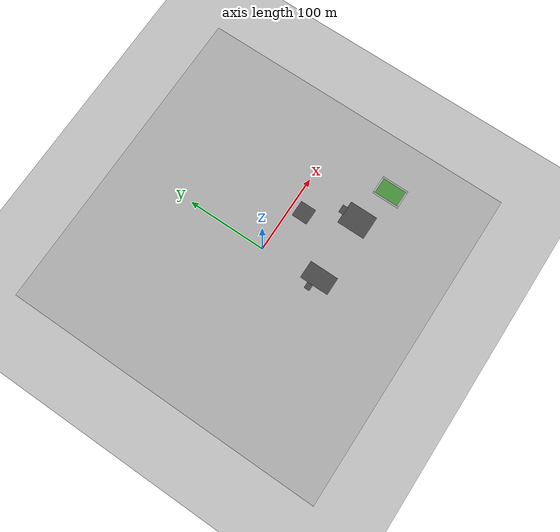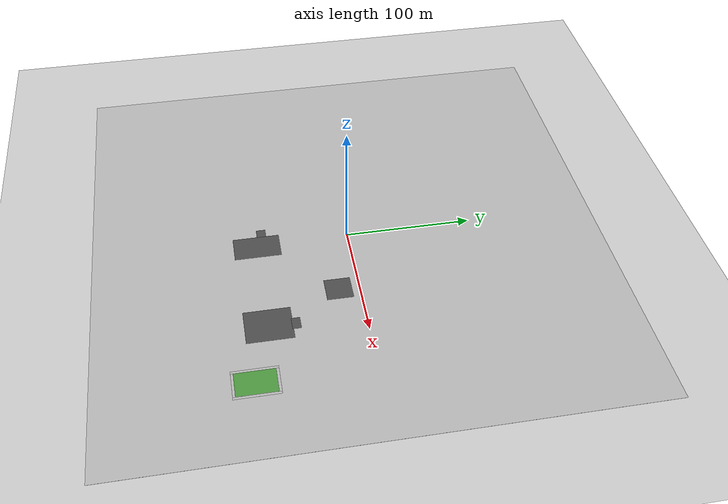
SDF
<sdf version="1.6">
 <world name="default">
  <scene>
   <grid>0</grid>
   <origin_visual>0</origin_visual>
   <ambient>0.592 0.624 0.635 1</ambient>
   <sky><clouds><speed>12</speed></clouds></sky>
   <background>0.35 0.35 0.35 1</background>
   <shadows>1</shadows>
  </scene>
  <physics name="default_physics" default="0" type="ode">
   <ode>
    <solver>
     <type>quick</type>
     <iters>10</iters>
     <sor>1.3</sor>
     <use_dynamic_moi_rescaling>0</use_dynamic_moi_rescaling>
    </solver>
    <constraints>
     <cfm>0</cfm>
     <erp>0.2</erp>
     <contact_max_correcting_vel>100</contact_max_correcting_vel>
     <contact_surface_layer>0.001</contact_surface_layer>
    </constraints>
   </ode>
   <max_step_size>0.004</max_step_size>
   <real_time_factor>1</real_time_factor>
   <real_time_update_rate>250</real_time_update_rate>
  </physics>
  <spherical_coordinates>
   <surface_model>EARTH_WGS84</surface_model>
   <latitude_deg>0</latitude_deg>
   <longitude_deg>0</longitude_deg>
   <elevation>0</elevation>
   <heading_deg>0</heading_deg>
  </spherical_coordinates>
  <light name="sun" type="directional">
   <pose>0 0 1000 0 -0 0</pose>
   <diffuse>0.8 0.8 0.8 1</diffuse>
   <specular>0.5 0.5 0.5 1</specular>
   <attenuation>
    <range>1000</range>
    <constant>0.9</constant>
    <linear>0.01</linear>
    <quadratic>0.001</quadratic>
   </attenuation>
   <direction>-0.5 0.1 -0.4</direction>
  </light>
  <model name="shaderbox">
   <pose>0 0 -5 0 -0 0</pose>
   <static>1</static>
   <link name="link">
    <visual name="visual">
     <geometry><box><size>0.1 0.1 0.1</size></box></geometry>
     <material>
      <script><uri>file://media/materials/scripts/citysim.material</uri><name>CitySim/ShinyGrey</name></script>
     </material>
     <plugin name="bloom" filename="libBloomVisualPlugin.so"/>
     <plugin name="lensflare" filename="libLensFlareVisualPlugin.so"/>
    </visual>
   </link>
  </model>
  <model name="ground_plane">
   <static>1</static>
   <link name="link">
    <collision name="collision">
     <geometry><plane><normal>0 0 1</normal><size>100 100</size></plane></geometry>
     <surface><friction><ode><mu>100</mu><mu2>50</mu2></ode></friction></surface>
    </collision>
    <visual name="visual">
     <cast_shadows>0</cast_shadows>
     <geometry><plane><normal>0 0 1</normal><size>100 100</size></plane></geometry>
     <material>
      <script><uri>file://media/materials/scripts/gazebo.material</uri><name>Gazebo/Grey</name></script>
     </material>
    </visual>
   </link>
   <pose>0 0 4.95 0 -0 0</pose>
  </model>
  <model name="lawn_plane">
   <static>1</static>
   <link name="link">
    <collision name="collision"><geometry><box><size>400 400 0.1</size></box></geometry></collision>
    <visual name="visual">
     <cast_shadows>0</cast_shadows>
     <geometry><box><size>400 400 0.1</size></box></geometry>
     <material>
      <script>
       <uri>model://lawn_plane/materials/scripts</uri>
       <uri>model://lawn_plane/materials/textures</uri>
       <name>vrc/lawn</name>
      </script>
     </material>
    </visual>
   </link>
   <pose>0 0 4.95 0 -0 0</pose>
  </model>
  <model name="robocup_3Dsim_field_90">
   <static>1</static>
   <link name="field">
    <pose>0 0 0.01 0 -0 0</pose>
    <collision name="collision">
     <geometry><plane><normal>0 0 1</normal><size>30 20</size></plane></geometry>
     <surface><friction><ode><mu>100</mu><mu2>50</mu2></ode></friction></surface>
    </collision>
    <visual name="base1">
     <pose>0 11 0.001 0 -0 0</pose>
     <cast_shadows>0</cast_shadows>
     <geometry><plane><normal>0 0 1</normal><size>34 2</size></plane></geometry>
     <material>
      <script>
       <uri>model://robocup_3Dsim_field/materials/scripts/</uri>
       <uri>model://robocup_3Dsim_field/materials/textures/</uri>
       <name>RoboCup/FieldBorder</name>
      </script>
     </material>
    </visual>
    <visual name="base2">
     <pose>0 -11 0.001 0 -0 0</pose>
     <cast_shadows>0</cast_shadows>
     <geometry><plane><normal>0 0 1</normal><size>34 2</size></plane></geometry>
     <material>
      <script>
       <uri>model://robocup_3Dsim_field/materials/scripts/</uri>
       <uri>model://robocup_3Dsim_field/materials/textures/</uri>
       <name>RoboCup/FieldBorder</name>
      </script>
     </material>
    </visual>
    <visual name="base3">
     <pose>16 0 0.001 0 -0 0</pose>
     <cast_shadows>0</cast_shadows>
     <geometry><plane><normal>0 0 1</normal><size>2 20</size></plane></geometry>
     <material>
      <script>
       <uri>model://robocup_3Dsim_field/materials/scripts/</uri>
       <uri>model://robocup_3Dsim_field/materials/textures/</uri>
       <name>RoboCup/FieldBorder</name>
      </script>
     </material>
    </visual>
    <visual name="base4">
     <pose>-16 0 0.001 0 -0 0</pose>
     <cast_shadows>0</cast_shadows>
     <geometry><plane><normal>0 0 1</normal><size>2 20</size></plane></geometry>
     <material>
      <script>
       <uri>model://robocup_3Dsim_field/materials/scripts/</uri>
       <uri>model://robocup_3Dsim_field/materials/textures/</uri>
       <name>RoboCup/FieldBorder</name>
      </script>
     </material>
    </visual>
    <visual name="carpet">
     <cast_shadows>0</cast_shadows>
     <geometry><plane><normal>0 0 1</normal><size>30 20</size></plane></geometry>
     <material>
      <script>
       <uri>model://robocup_3Dsim_field/materials/scripts/</uri>
       <uri>model://robocup_3Dsim_field/materials/textures/</uri>
       <name>RoboCup/Grass</name>
      </script>
     </material>
    </visual>
   </link>
   <pose>138.5 -86.6 5.06 0 -0 1.57</pose>
  </model>
  <model name="asphalt_plane_138">
   <static>1</static>
   <pose>61.581 -16.664 5.01 0 -0 0</pose>
   <link name="link">
    <collision name="collision"><geometry><box><size>20 20 0.1</size></box></geometry></collision>
    <visual name="visual">
     <geometry><box><size>20 20 0.05</size></box></geometry>
     <material>
      <script>
       <uri>model://asphalt_plane/materials/scripts</uri>
       <uri>model://asphalt_plane/materials/textures</uri>
       <name>vrc/asphalt</name>
      </script>
     </material>
    </visual>
   </link>
  </model>
  <model name="asphalt_plane_148">
   <static>1</static>
   <pose>88.62 -72.49 5.01 0 -0 0</pose>
   <link name="link">
    <collision name="collision"><geometry><box><size>29.378 35.24 0.1</size></box></geometry></collision>
    <visual name="visual">
     <geometry><box><size>29.378 35.24 0.05</size></box></geometry>
     <material>
      <script>
       <uri>model://asphalt_plane/materials/scripts</uri>
       <uri>model://asphalt_plane/materials/textures</uri>
       <name>vrc/asphalt</name>
      </script>
     </material>
    </visual>
   </link>
  </model>
  <model name="asphalt_plane_149">
   <static>1</static>
   <pose>90 -52.48 5.01 0 -0 0</pose>
   <link name="link">
    <collision name="collision"><geometry><box><size>10.15 6.61 0.1</size></box></geometry></collision>
    <visual name="visual">
     <geometry><box><size>10.15 6.61 0.05</size></box></geometry>
     <material>
      <script>
       <uri>model://asphalt_plane/materials/scripts</uri>
       <uri>model://asphalt_plane/materials/textures</uri>
       <name>vrc/asphalt</name>
      </script>
     </material>
    </visual>
   </link>
  </model>
  <model name="asphalt_plane_321">
   <static>1</static>
   <pose>7.4 -72.69 5.01 0 -0 0</pose>
   <link name="link">
    <collision name="collision"><geometry><box><size>22.248 36.24 0.1</size></box></geometry></collision>
    <visual name="visual">
     <geometry><box><size>22.248 36.24 0.05</size></box></geometry>
     <material>
      <script>
       <uri>model://asphalt_plane/materials/scripts</uri>
       <uri>model://asphalt_plane/materials/textures</uri>
       <name>vrc/asphalt</name>
      </script>
     </material>
    </visual>
   </link>
  </model>
  <model name="asphalt_plane_322">
   <static>1</static>
   <pose>-7.51 -67.99 5.01 0 -0 0</pose>
   <link name="link">
    <collision name="collision"><geometry><box><size>7.63 7.24 0.1</size></box></geometry></collision>
    <visual name="visual">
     <geometry><box><size>7.63 7.24 0.05</size></box></geometry>
     <material>
      <script>
       <uri>model://asphalt_plane/materials/scripts</uri>
       <uri>model://asphalt_plane/materials/textures</uri>
       <name>vrc/asphalt</name>
      </script>
     </material>
    </visual>
   </link>
  </model>
  <gravity>0 0 -9.8</gravity>
  <magnetic_field>6e-06 2.3e-05 -4.2e-05</magnetic_field>
  <atmosphere type="adiabatic"/>
 </world>
</sdf>
